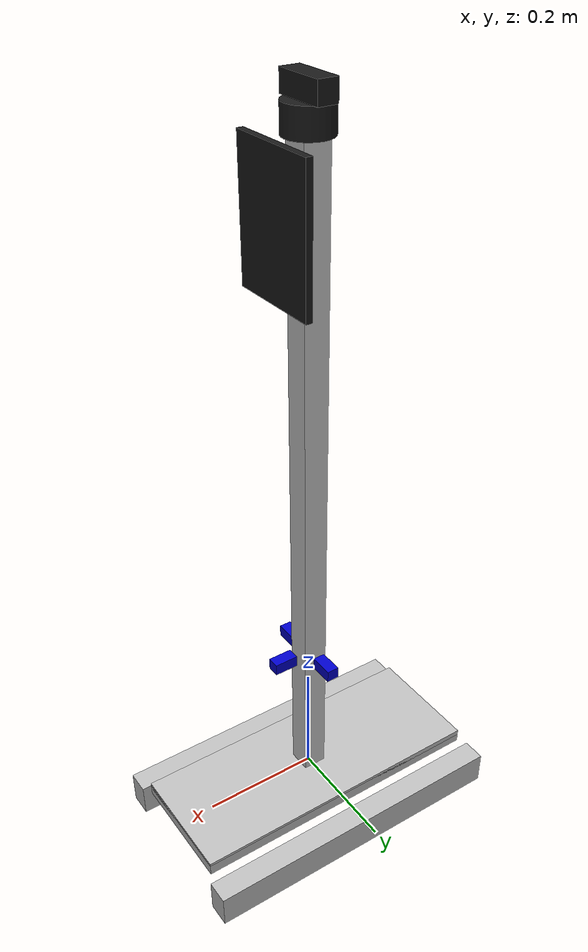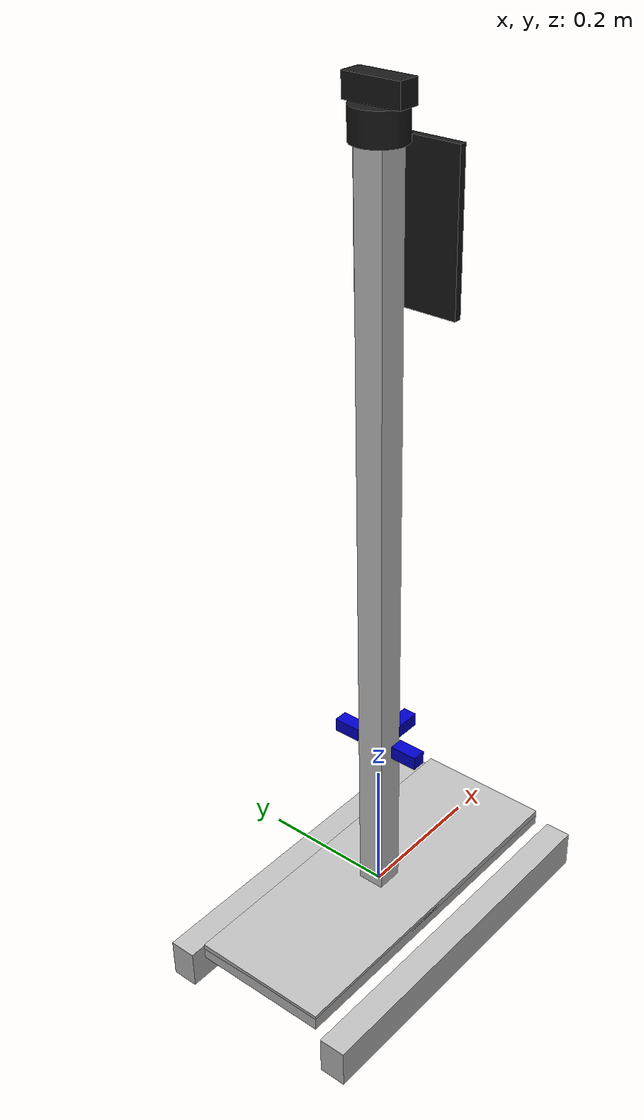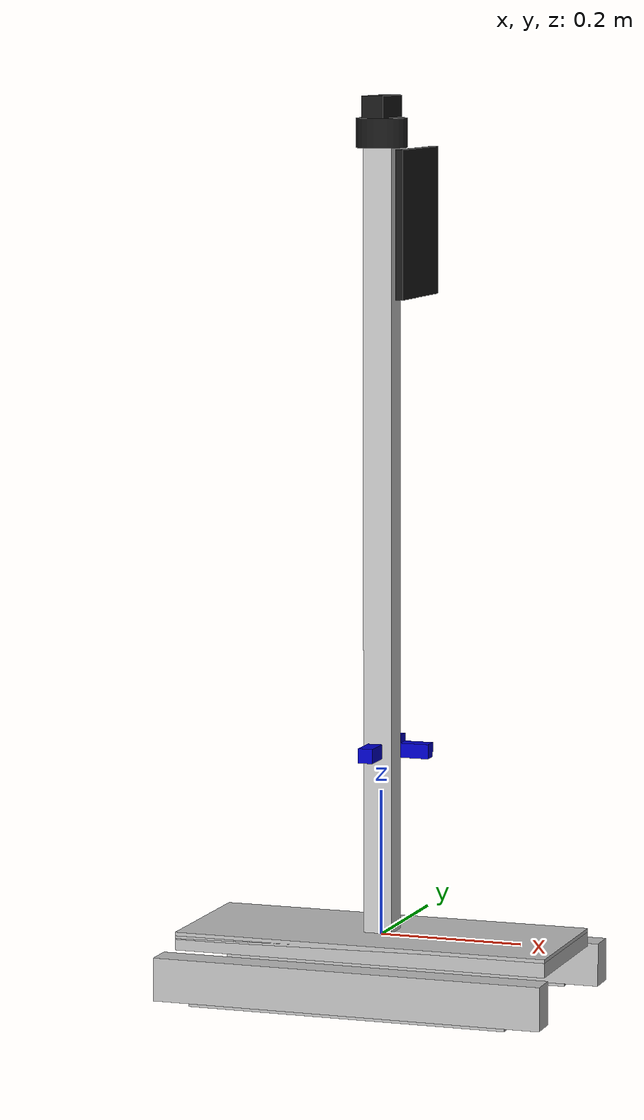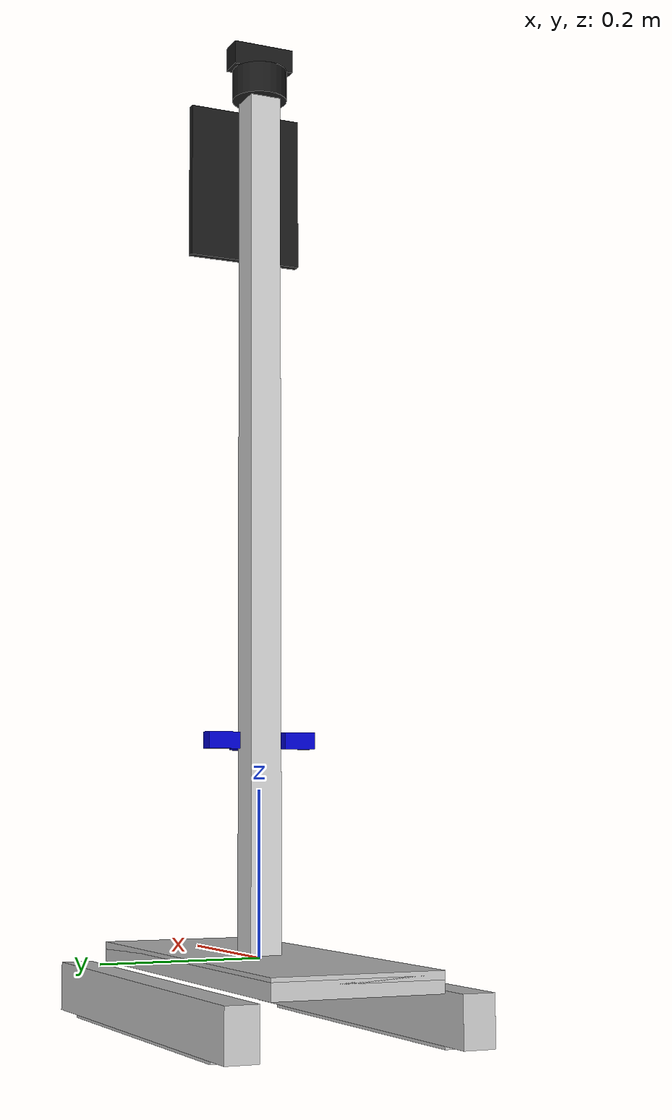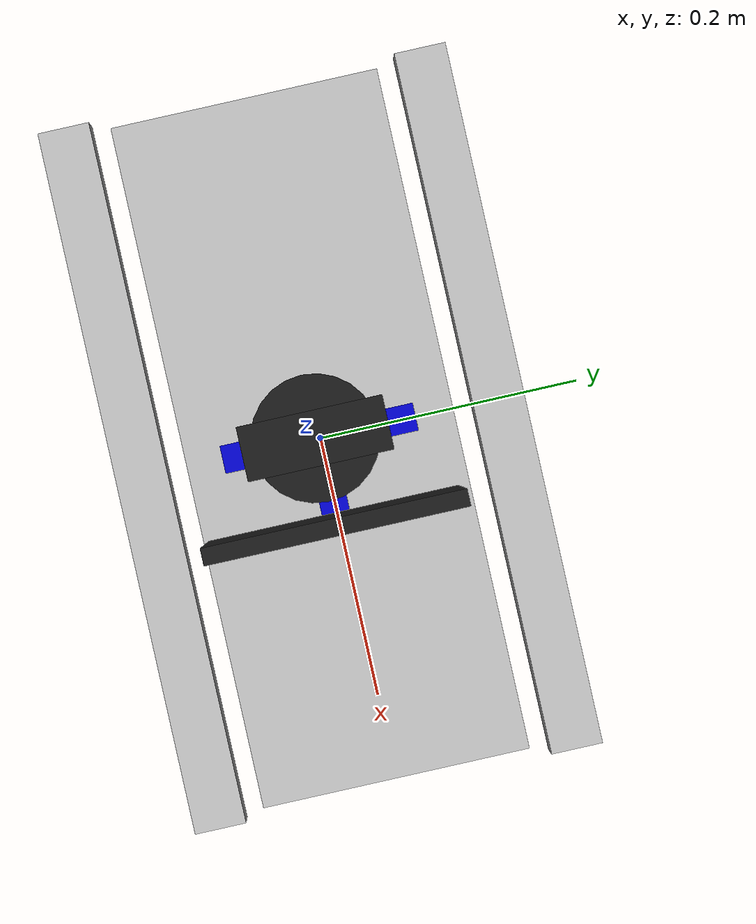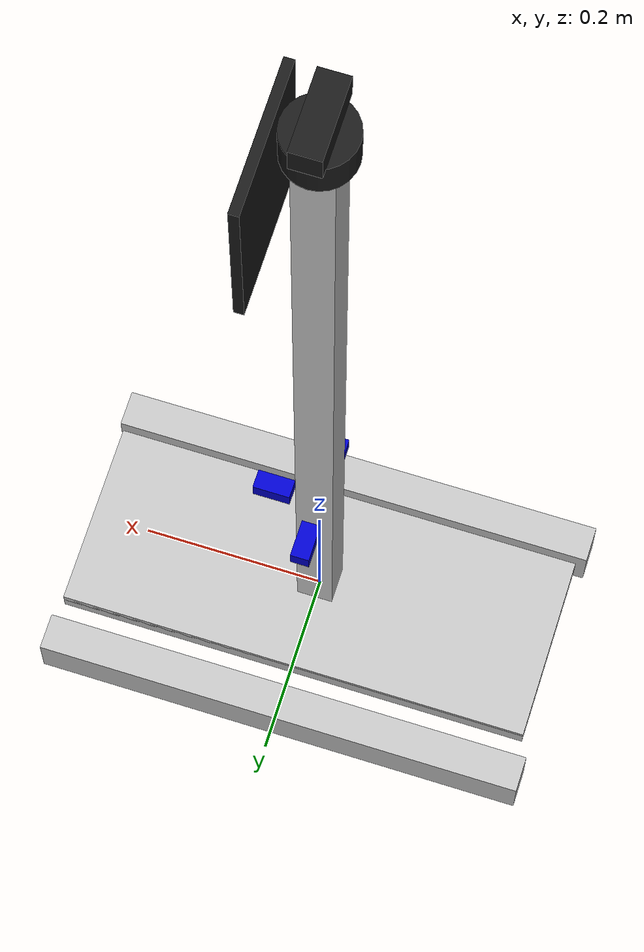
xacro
<?xml version="1.0"?>
<robot xmlns:xacro="http://www.ros.org/wiki/xacro" name="masbot">

  <!-- Include the URDF model -->
  <xacro:include filename="$(find masbot_description)/urdf/masbot.urdf" />

  <!-- Hardware interface parameters for the robot -->
  <ros2_control name="MasbotHardwareInterface" type="system">
    <hardware>
      <plugin>masbot_hardware_interface/MasbotHardwareInterface</plugin>
      <param name="left_wheel_name">left_front_sprocket_joint</param>
      <param name="right_wheel_name">right_front_sprocket_joint</param>
      <param name="encoder_counts_per_rev">1440</param>

      <!-- Motor driver pins (these would be actual GPIO pins on a real robot) -->
      <param name="left_motor_pwm_pin">12</param>
      <param name="left_motor_dir_pin">13</param>
      <param name="right_motor_pwm_pin">18</param>
      <param name="right_motor_dir_pin">19</param>

      <!-- Encoder pins (these would be actual GPIO pins on a real robot) -->
      <param name="left_encoder_a_pin">23</param>
      <param name="left_encoder_b_pin">24</param>
      <param name="right_encoder_a_pin">25</param>
      <param name="right_encoder_b_pin">26</param>
    </hardware>

    <!-- Joints to be controlled -->
    <joint name="left_front_sprocket_joint">
      <command_interface name="velocity">
        <param name="min">-10</param>
        <param name="max">10</param>
      </command_interface>
      <state_interface name="position"/>
      <state_interface name="velocity"/>
    </joint>

    <joint name="right_front_sprocket_joint">
      <command_interface name="velocity">
        <param name="min">-10</param>
        <param name="max">10</param>
      </command_interface>
      <state_interface name="position"/>
      <state_interface name="velocity"/>
    </joint>
  </ros2_control>

  <!-- Gazebo plugins would be added here for simulation -->

</robot>

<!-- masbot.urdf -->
<robot name="masbot">
  <!-- Robot dimensions from photographs and measurements -->
  <!-- Base is 9.5cm off ground, 53cm length, 20.75cm width -->
  <!-- Total height is 118cm from base -->
  <!-- Track width 28cm, track length 55cm -->

  <!-- Colors -->
  <material name="aluminum">
    <color rgba="0.8 0.8 0.8 1.0"/>
  </material>
  <material name="black">
    <color rgba="0.1 0.1 0.1 1.0"/>
  </material>
  <material name="blue">
    <color rgba="0.0 0.0 0.8 1.0"/>
  </material>
  <material name="silver">
    <color rgba="0.75 0.75 0.75 1.0"/>
  </material>
  <material name="white">
    <color rgba="1.0 1.0 1.0 1.0"/>
  </material>

  <!-- Base Link - The primary reference frame for the robot -->
  <link name="base_link">
    <visual>
      <geometry>
        <box size="0.53 0.2075 0.01"/>
      </geometry>
      <material name="silver"/>
    </visual>
    <collision>
      <geometry>
        <box size="0.53 0.2075 0.01"/>
      </geometry>
    </collision>
    <inertial>
      <mass value="4.0"/>
      <inertia ixx="0.1" ixy="0.0" ixz="0.0" iyy="0.1" iyz="0.0" izz="0.1"/>
    </inertial>
  </link>

  <!-- Base Footprint - A projection of the robot onto the ground plane -->
  <link name="base_footprint"/>
  <joint name="base_footprint_joint" type="fixed">
    <parent link="base_link"/>
    <child link="base_footprint"/>
    <origin xyz="0 0 -0.095" rpy="0 0 0"/>
  </joint>

  <!-- Chassis - The main body/platform of the robot -->
  <link name="chassis_link">
    <visual>
      <geometry>
        <box size="0.53 0.2075 0.02"/>
      </geometry>
      <material name="silver"/>
    </visual>
    <collision>
      <geometry>
        <box size="0.53 0.2075 0.02"/>
      </geometry>
    </collision>
  </link>
  <joint name="chassis_joint" type="fixed">
    <parent link="base_link"/>
    <child link="chassis_link"/>
    <origin xyz="0 0 -0.01" rpy="0 0 0"/>
  </joint>

  <!-- Left Track Assembly -->
  <link name="left_track_assembly">
    <visual>
      <geometry>
        <!-- Overall shape for visualization -->
        <box size="0.55 0.04 0.06"/>
      </geometry>
      <material name="silver"/>
    </visual>
  </link>
  <joint name="left_track_joint" type="fixed">
    <parent link="base_link"/>
    <child link="left_track_assembly"/>
    <origin xyz="0 0.14 -0.05" rpy="0 0 0"/>
  </joint>

  <!-- Right Track Assembly -->
  <link name="right_track_assembly">
    <visual>
      <geometry>
        <!-- Overall shape for visualization -->
        <box size="0.55 0.04 0.06"/>
      </geometry>
      <material name="silver"/>
    </visual>
  </link>
  <joint name="right_track_joint" type="fixed">
    <parent link="base_link"/>
    <child link="right_track_assembly"/>
    <origin xyz="0 -0.14 -0.05" rpy="0 0 0"/>
  </joint>

  <!-- Left Front Sprocket (with encoder) -->
  <link name="left_front_sprocket">
    <visual>
      <geometry>
        <cylinder length="0.03" radius="0.025"/>
      </geometry>
      <material name="silver"/>
    </visual>
  </link>
  <joint name="left_front_sprocket_joint" type="continuous">
    <parent link="left_track_assembly"/>
    <child link="left_front_sprocket"/>
    <origin xyz="0.225 0 0" rpy="1.5708 0 0"/>
    <axis xyz="0 0 1"/>
  </joint>

  <!-- Right Front Sprocket (with encoder) -->
  <link name="right_front_sprocket">
    <visual>
      <geometry>
        <cylinder length="0.03" radius="0.025"/>
      </geometry>
      <material name="silver"/>
    </visual>
  </link>
  <joint name="right_front_sprocket_joint" type="continuous">
    <parent link="right_track_assembly"/>
    <child link="right_front_sprocket"/>
    <origin xyz="0.225 0 0" rpy="1.5708 0 0"/>
    <axis xyz="0 0 1"/>
  </joint>

  <!-- Left Rear Sprocket -->
  <link name="left_rear_sprocket">
    <visual>
      <geometry>
        <cylinder length="0.03" radius="0.025"/>
      </geometry>
      <material name="silver"/>
    </visual>
  </link>
  <joint name="left_rear_sprocket_joint" type="continuous">
    <parent link="left_track_assembly"/>
    <child link="left_rear_sprocket"/>
    <origin xyz="-0.225 0 0" rpy="1.5708 0 0"/>
    <axis xyz="0 0 1"/>
    <mimic joint="left_front_sprocket_joint" multiplier="1.0" offset="0"/>
  </joint>

  <!-- Right Rear Sprocket -->
  <link name="right_rear_sprocket">
    <visual>
      <geometry>
        <cylinder length="0.03" radius="0.025"/>
      </geometry>
      <material name="silver"/>
    </visual>
  </link>
  <joint name="right_rear_sprocket_joint" type="continuous">
    <parent link="right_track_assembly"/>
    <child link="right_rear_sprocket"/>
    <origin xyz="-0.225 0 0" rpy="1.5708 0 0"/>
    <axis xyz="0 0 1"/>
    <mimic joint="right_front_sprocket_joint" multiplier="1.0" offset="0"/>
  </joint>

  <!-- Additional Track Wheels Left Side -->
  <link name="left_track_wheels">
    <visual>
      <geometry>
        <!-- Representing multiple wheels as a single visual element -->
        <box size="0.45 0.03 0.01"/>
      </geometry>
      <material name="silver"/>
    </visual>
  </link>
  <joint name="left_track_wheels_joint" type="fixed">
    <parent link="left_track_assembly"/>
    <child link="left_track_wheels"/>
    <origin xyz="0 0 -0.03" rpy="0 0 0"/>
  </joint>

  <!-- Additional Track Wheels Right Side -->
  <link name="right_track_wheels">
    <visual>
      <geometry>
        <!-- Representing multiple wheels as a single visual element -->
        <box size="0.45 0.03 0.01"/>
      </geometry>
      <material name="silver"/>
    </visual>
  </link>
  <joint name="right_track_wheels_joint" type="fixed">
    <parent link="right_track_assembly"/>
    <child link="right_track_wheels"/>
    <origin xyz="0 0 -0.03" rpy="0 0 0"/>
  </joint>

  <!-- Main Mast (Aluminum Vertical Structure) -->
  <link name="mast_link">
    <visual>
      <geometry>
        <box size="0.04 0.04 1.08"/>
      </geometry>
      <material name="aluminum"/>
    </visual>
    <collision>
      <geometry>
        <box size="0.04 0.04 1.08"/>
      </geometry>
    </collision>
  </link>
  <joint name="mast_joint" type="fixed">
    <parent link="base_link"/>
    <child link="mast_link"/>
    <origin xyz="0 0 0.54" rpy="0 0 0"/>
  </joint>

  <!-- Mid Mast Point (for ultrasonic sensors) -->
  <link name="mast_mid"/>
  <joint name="mast_mid_joint" type="fixed">
    <parent link="mast_link"/>
    <child link="mast_mid"/>
    <origin xyz="0 0 -0.28" rpy="0 0 0"/>
  </joint>

  <!-- Top Mast Point (for sensors and screen) -->
  <link name="mast_top"/>
  <joint name="mast_top_joint" type="fixed">
    <parent link="mast_link"/>
    <child link="mast_top"/>
    <origin xyz="0 0 0.54" rpy="0 0 0"/>
  </joint>

  <!-- Ultrasonic Sensors at 26cm height, positioned around the robot -->
  <link name="ultrasonic_front_link">
    <visual>
      <geometry>
        <box size="0.04 0.02 0.02"/>
      </geometry>
      <material name="blue"/>
    </visual>
  </link>
  <joint name="ultrasonic_front_joint" type="fixed">
    <parent link="mast_mid"/>
    <child link="ultrasonic_front_link"/>
    <origin xyz="0.05 0 0" rpy="0 0 0"/>
  </joint>

  <link name="ultrasonic_left_link">
    <visual>
      <geometry>
        <box size="0.02 0.04 0.02"/>
      </geometry>
      <material name="blue"/>
    </visual>
  </link>
  <joint name="ultrasonic_left_joint" type="fixed">
    <parent link="mast_mid"/>
    <child link="ultrasonic_left_link"/>
    <origin xyz="0 0.05 0" rpy="0 0 0"/>
  </joint>

  <link name="ultrasonic_right_link">
    <visual>
      <geometry>
        <box size="0.02 0.04 0.02"/>
      </geometry>
      <material name="blue"/>
    </visual>
  </link>
  <joint name="ultrasonic_right_joint" type="fixed">
    <parent link="mast_mid"/>
    <child link="ultrasonic_right_link"/>
    <origin xyz="0 -0.05 0" rpy="0 0 0"/>
  </joint>

  <!-- RPLidar at the top of the mast -->
  <link name="lidar_link">
    <visual>
      <geometry>
        <cylinder length="0.04" radius="0.035"/>
      </geometry>
      <material name="black"/>
    </visual>
    <collision>
      <geometry>
        <cylinder length="0.04" radius="0.035"/>
      </geometry>
    </collision>
  </link>
  <joint name="lidar_joint" type="fixed">
    <parent link="mast_top"/>
    <child link="lidar_link"/>
    <origin xyz="0 0 0.02" rpy="0 0 0"/>
  </joint>

  <!-- Camera just above the lidar -->
  <link name="camera_link">
    <visual>
      <geometry>
        <box size="0.03 0.08 0.03"/>
      </geometry>
      <material name="black"/>
    </visual>
  </link>
  <joint name="camera_joint" type="fixed">
    <parent link="mast_top"/>
    <child link="camera_link"/>
    <origin xyz="0 0 0.055" rpy="0 0 0"/>
  </joint>

  <!-- LCD Screen in portrait orientation -->
  <link name="lcd_screen_link">
    <visual>
      <geometry>
        <box size="0.01 0.15 0.2"/>
      </geometry>
      <material name="black"/>
    </visual>
  </link>
  <joint name="lcd_screen_joint" type="fixed">
    <parent link="mast_top"/>
    <child link="lcd_screen_link"/>
    <origin xyz="0.05 0 -0.1" rpy="0 0 0"/>
  </joint>

  <!-- IMU Link (MPU6050) at the center of the base -->
  <link name="imu_link">
    <visual>
      <geometry>
        <box size="0.02 0.02 0.005"/>
      </geometry>
      <material name="blue"/>
    </visual>
  </link>
  <joint name="imu_joint" type="fixed">
    <parent link="base_link"/>
    <child link="imu_link"/>
    <origin xyz="0 0 -0.01" rpy="0 0 0"/>
  </joint>

  <!-- Gazebo plugins would be configured here -->
</robot>
